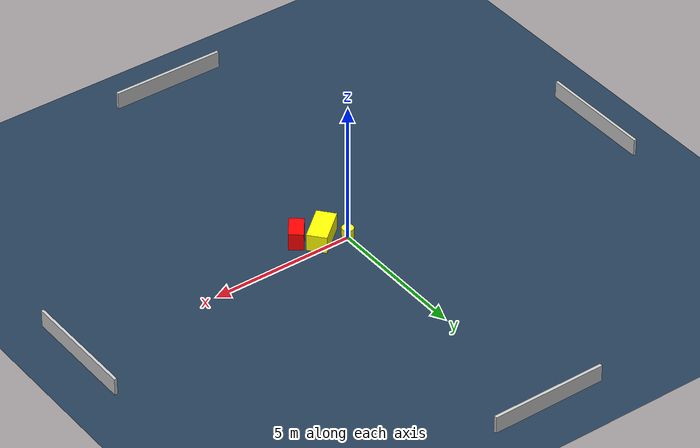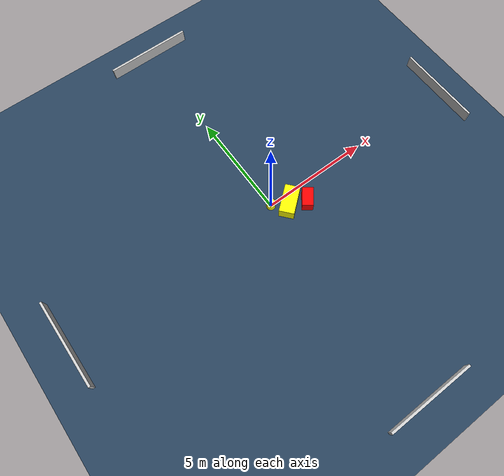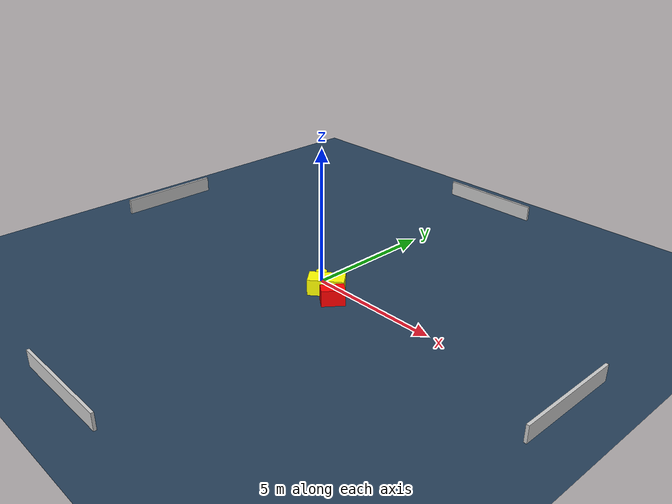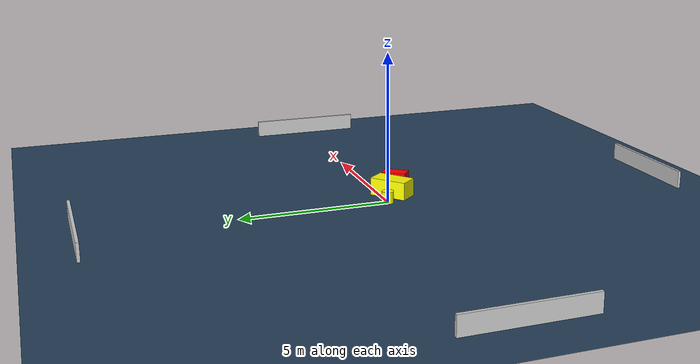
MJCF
<?xml version="1.0" ?>
<mujoco model="generated_environment">
  <option timestep="0.01" integrator="RK4" cone="elliptic"/>
  <default>
    <geom density="1"/>
  </default>
  <asset>
    <texture builtin="gradient" height="3072" name="skybox" rgb1="0.3 0.5 0.7" rgb2="0 0 0" type="skybox" width="512"/>
    <texture builtin="checker" height="300" name="groundplane" rgb1="0.2 0.3 0.4" rgb2="0.1 0.2 0.3" type="2d" width="300"/>
    <material name="groundplane" reflectance="0.2" texrepeat="5 5" texture="groundplane"/>
  </asset>
  <worldbody>
    <light dir="0 0 -1" directional="true" pos="0 0 1.5"/>
    <geom condim="3" friction="0.5 0.005 0.001" material="groundplane" name="floor" pos="0 0 0" size="0 0 0.05" type="plane"/>
    <body name="walls">
      <geom name="wall_1" condim="4" pos="-10.0 0.0 0.3" rgba="0.800000011920929 0.800000011920929 0.800000011920929 1.0" size="0.05 2.0 0.3" type="box"/>
      <geom name="wall_2" condim="4" pos="10.0 0.0 0.3" rgba="0.800000011920929 0.800000011920929 0.800000011920929 1.0" size="0.05 2.0 0.3" type="box"/>
      <geom name="wall_3" condim="4" pos="0.0 -10.0 0.3" rgba="0.800000011920929 0.800000011920929 0.800000011920929 1.0" size="2.0 0.05 0.3" type="box"/>
      <geom name="wall_4" condim="4" pos="0.0 10.0 0.3" rgba="0.800000011920929 0.800000011920929 0.800000011920929 1.0" size="2.0 0.05 0.3" type="box"/>
    </body>
    <body name="robot">
      <joint name="joint_x" type="slide" pos="0 0 0" axis="1 0 0"/>
      <joint name="joint_y" type="slide" pos="0 0 0" axis="0 1 0"/>
      <geom name="robot" type="cylinder" pos="0.0 0.0 0.2" size="0.2 0.2 0.0" mass="5.0" friction="1.0 0.005 0.0001" condim="4" rgba="1.0 1.0 0.0 1.0"/>
    </body>
    <body name="obstacle_1_movable">
      <geom name="obstacle_1_movable" condim="4" pos="0.705262175105929 -0.4144551797698573 0.3" euler="0 0 310.03724225186164" friction="0.0 0.005 0.001" rgba="1.0 1.0 0.0 1.0" size="0.3380118060771128 0.6484796825997592 0.3" type="box" mass="0.1"/>
      <joint type="free"/>
    </body>
    <body name="obstacle_2_static">
      <geom name="obstacle_2_static" condim="4" pos="1.412709710300696 -0.7855428399008213 0.3" euler="0 0 52.632215030725945" friction="0.0 0.005 0.001" rgba="1.0 0.0 0.0 1.0" size="0.4181197598418893 0.24746403158723485 0.3" type="box"/>
    </body>
  </worldbody>
  <actuator>
    <motor name="actuator_x" joint="joint_x" gear="1" ctrlrange="-1 1"/>
    <motor name="actuator_y" joint="joint_y" gear="1" ctrlrange="-1 1"/>
  </actuator>
</mujoco>
